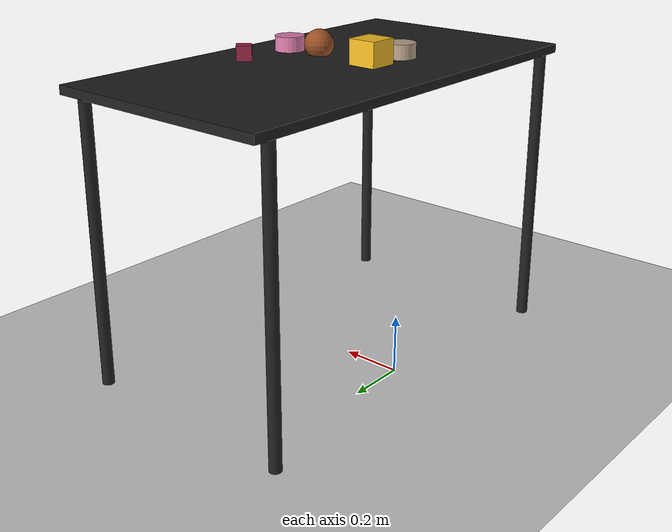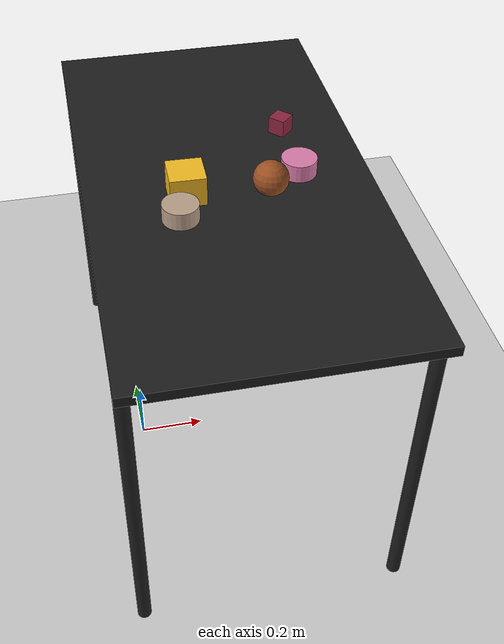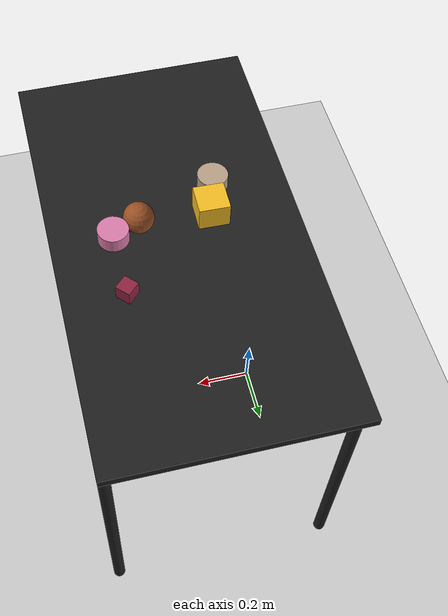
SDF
<?xml version="1.0" ?>
<sdf version="1.6">
  <world name="arm_world">
    <plugin filename="gz-sim-physics-system" name="gz::sim::systems::Physics">
      <engine>
        <filename>libgz-physics-bullet-featherstone-plugin.so</filename>
      </engine>
    </plugin>
    <plugin filename="gz-sim-user-commands-system" name="gz::sim::systems::UserCommands"/>
    <plugin filename="gz-sim-scene-broadcaster-system" name="gz::sim::systems::SceneBroadcaster"/>
    <plugin filename="gz-sim-sensors-system" name="gz::sim::systems::Sensors">
      <render_engine>ogre2</render_engine>
    </plugin>
    <gravity>0.0 0.0 -9.8</gravity>
    <scene>
      <shadows>false</shadows>
    </scene>
    <gui>
      <camera name="user_camera">
        <pose>0.75 -0.75 1.4 0 0.29 2.21</pose>
      </camera>
    </gui>
    <include>
      <uri>https://fuel.gazebosim.org/1.0/OpenRobotics/models/Sun</uri>
    </include>
    <model name="table">
      <static>true</static>
      <include>
        <uri>model://table</uri>
      </include>
      <pose>0.29 0 0 0 0 1.5708</pose>
    </model>
    <model name="ground_plane">
      <static>true</static>
      <link name="link">
        <collision name="collision">
          <geometry>
            <plane>
              <normal>0 0 1</normal>
            </plane>
          </geometry>
          <surface>
            <friction>
              <ode>
                <mu>1.0</mu>
                <mu2>1.0</mu2>
              </ode>
            </friction>
          </surface>
        </collision>
        <visual name="visual">
          <geometry>
            <plane>
              <normal>0 0 1</normal>
              <size>100 100</size>
            </plane>
          </geometry>
          <material>
            <ambient>0.8 0.8 0.8 1</ambient>
            <diffuse>0.8 0.8 0.8 1</diffuse>
            <specular>0.8 0.8 0.8 1</specular>
          </material>
        </visual>
      </link>
    </model>
    <model name="cube_l_0">
      <pose>0.168 -0.061 1.05 0 0 3.12</pose>
      <link name="cube_l_0_link">
        <inertial>
          <mass>0.05</mass>
          <inertia>
            <ixx>2.04e-7</ixx>
            <iyy>2.04e-7</iyy>
            <izz>3.9e-8</izz>
            <ixy>0</ixy>
            <ixz>0</ixz>
            <iyz>0</iyz>
          </inertia>
        </inertial>
        <collision name="cube_l_0_collision">
          <geometry>
            <box>
              <size>0.1 0.1 0.1</size>
            </box>
          </geometry>
          <surface>
            <friction>
              <ode>
                <mu>0.8</mu>
                <mu2>0.8</mu2>
                <fdir1>0 0 1</fdir1>
                <slip1>0.001</slip1>
                <slip2>0.001</slip2>
              </ode>
              <torsional>
                <coefficient>0.1</coefficient>
                <surface_radius>0.015</surface_radius>
                <use_patch_radius>true</use_patch_radius>
              </torsional>
            </friction>
            <contact>
              <ode>
                <kp>1e5</kp>
                <kd>10</kd>
                <max_vel>0.1</max_vel>
                <min_depth>0.001</min_depth>
                <soft_cfm>0.01</soft_cfm>
                <soft_erp>0.2</soft_erp>
              </ode>
            </contact>
            <bounce>
              <restitution_coefficient>0.2</restitution_coefficient>
              <threshold>0.01</threshold>
            </bounce>
          </surface>
        </collision>
        <visual name="cube_l_0_visual">
          <geometry>
            <box>
              <size>0.1 0.1 0.1</size>
            </box>
          </geometry>
          <material>
            <ambient>0.96 0.74 0.14 1</ambient>
            <diffuse>0.96 0.74 0.14 1</diffuse>
          </material>
        </visual>
        <velocity_decay>
          <linear>1</linear>
          <angular>1</angular>
        </velocity_decay>
      </link>
    </model>
    <model name="cylinder_l_1">
      <pose>0.489 -0.028 1.05 0 0 6.13</pose>
      <link name="cylinder_l_1_link">
        <inertial>
          <mass>0.05</mass>
          <inertia>
            <ixx>2.04e-7</ixx>
            <iyy>2.04e-7</iyy>
            <izz>3.9e-8</izz>
            <ixy>0</ixy>
            <ixz>0</ixz>
            <iyz>0</iyz>
          </inertia>
        </inertial>
        <collision name="cylinder_l_1_collision">
          <geometry>
            <cylinder>
              <radius>0.05</radius>
              <length>0.05</length>
            </cylinder>
          </geometry>
          <surface>
            <friction>
              <ode>
                <mu>0.8</mu>
                <mu2>0.8</mu2>
                <fdir1>0 0 1</fdir1>
                <slip1>0.001</slip1>
                <slip2>0.001</slip2>
              </ode>
              <torsional>
                <coefficient>0.1</coefficient>
                <surface_radius>0.015</surface_radius>
                <use_patch_radius>true</use_patch_radius>
              </torsional>
            </friction>
            <contact>
              <ode>
                <kp>1e5</kp>
                <kd>10</kd>
                <max_vel>0.1</max_vel>
                <min_depth>0.001</min_depth>
                <soft_cfm>0.01</soft_cfm>
                <soft_erp>0.2</soft_erp>
              </ode>
            </contact>
            <bounce>
              <restitution_coefficient>0.2</restitution_coefficient>
              <threshold>0.01</threshold>
            </bounce>
          </surface>
        </collision>
        <visual name="cylinder_l_1_visual">
          <geometry>
            <cylinder>
              <radius>0.05</radius>
              <length>0.05</length>
            </cylinder>
          </geometry>
          <material>
            <ambient>0.86 0.49 0.67 1</ambient>
            <diffuse>0.86 0.49 0.67 1</diffuse>
          </material>
        </visual>
        <velocity_decay>
          <linear>1</linear>
          <angular>1</angular>
        </velocity_decay>
      </link>
    </model>
    <model name="cylinder_l_2">
      <pose>0.135 -0.172 1.05 0 0 0.13</pose>
      <link name="cylinder_l_2_link">
        <inertial>
          <mass>0.05</mass>
          <inertia>
            <ixx>2.04e-7</ixx>
            <iyy>2.04e-7</iyy>
            <izz>3.9e-8</izz>
            <ixy>0</ixy>
            <ixz>0</ixz>
            <iyz>0</iyz>
          </inertia>
        </inertial>
        <collision name="cylinder_l_2_collision">
          <geometry>
            <cylinder>
              <radius>0.05</radius>
              <length>0.05</length>
            </cylinder>
          </geometry>
          <surface>
            <friction>
              <ode>
                <mu>0.8</mu>
                <mu2>0.8</mu2>
                <fdir1>0 0 1</fdir1>
                <slip1>0.001</slip1>
                <slip2>0.001</slip2>
              </ode>
              <torsional>
                <coefficient>0.1</coefficient>
                <surface_radius>0.015</surface_radius>
                <use_patch_radius>true</use_patch_radius>
              </torsional>
            </friction>
            <contact>
              <ode>
                <kp>1e5</kp>
                <kd>10</kd>
                <max_vel>0.1</max_vel>
                <min_depth>0.001</min_depth>
                <soft_cfm>0.01</soft_cfm>
                <soft_erp>0.2</soft_erp>
              </ode>
            </contact>
            <bounce>
              <restitution_coefficient>0.2</restitution_coefficient>
              <threshold>0.01</threshold>
            </bounce>
          </surface>
        </collision>
        <visual name="cylinder_l_2_visual">
          <geometry>
            <cylinder>
              <radius>0.05</radius>
              <length>0.05</length>
            </cylinder>
          </geometry>
          <material>
            <ambient>0.73 0.63 0.54 1</ambient>
            <diffuse>0.73 0.63 0.54 1</diffuse>
          </material>
        </visual>
        <velocity_decay>
          <linear>1</linear>
          <angular>1</angular>
        </velocity_decay>
      </link>
    </model>
    <model name="sphere_l_3">
      <pose>0.399 -0.074 1.05 0 0 5.13</pose>
      <link name="sphere_l_3_link">
        <inertial>
          <mass>0.05</mass>
          <inertia>
            <ixx>2.04e-7</ixx>
            <iyy>2.04e-7</iyy>
            <izz>3.9e-8</izz>
            <ixy>0</ixy>
            <ixz>0</ixz>
            <iyz>0</iyz>
          </inertia>
        </inertial>
        <collision name="sphere_l_3_collision">
          <geometry>
            <sphere>
              <radius>0.05</radius>
            </sphere>
          </geometry>
          <surface>
            <friction>
              <ode>
                <mu>0.8</mu>
                <mu2>0.8</mu2>
                <fdir1>0 0 1</fdir1>
                <slip1>0.001</slip1>
                <slip2>0.001</slip2>
              </ode>
              <torsional>
                <coefficient>0.1</coefficient>
                <surface_radius>0.015</surface_radius>
                <use_patch_radius>true</use_patch_radius>
              </torsional>
            </friction>
            <contact>
              <ode>
                <kp>1e5</kp>
                <kd>10</kd>
                <max_vel>0.1</max_vel>
                <min_depth>0.001</min_depth>
                <soft_cfm>0.01</soft_cfm>
                <soft_erp>0.2</soft_erp>
              </ode>
            </contact>
            <bounce>
              <restitution_coefficient>0.2</restitution_coefficient>
              <threshold>0.01</threshold>
            </bounce>
          </surface>
        </collision>
        <visual name="sphere_l_3_visual">
          <geometry>
            <sphere>
              <radius>0.05</radius>
            </sphere>
          </geometry>
          <material>
            <ambient>0.6 0.31 0.14 1</ambient>
            <diffuse>0.6 0.31 0.14 1</diffuse>
          </material>
        </visual>
        <velocity_decay>
          <linear>1</linear>
          <angular>1</angular>
        </velocity_decay>
      </link>
    </model>
    <model name="cube_m_4">
      <pose>0.489 0.187 1.05 0 0 3.91</pose>
      <link name="cube_m_4_link">
        <inertial>
          <mass>0.05</mass>
          <inertia>
            <ixx>2.04e-7</ixx>
            <iyy>2.04e-7</iyy>
            <izz>3.9e-8</izz>
            <ixy>0</ixy>
            <ixz>0</ixz>
            <iyz>0</iyz>
          </inertia>
        </inertial>
        <collision name="cube_m_4_collision">
          <geometry>
            <box>
              <size>0.05 0.05 0.05</size>
            </box>
          </geometry>
          <surface>
            <friction>
              <ode>
                <mu>0.8</mu>
                <mu2>0.8</mu2>
                <fdir1>0 0 1</fdir1>
                <slip1>0.001</slip1>
                <slip2>0.001</slip2>
              </ode>
              <torsional>
                <coefficient>0.1</coefficient>
                <surface_radius>0.015</surface_radius>
                <use_patch_radius>true</use_patch_radius>
              </torsional>
            </friction>
            <contact>
              <ode>
                <kp>1e5</kp>
                <kd>10</kd>
                <max_vel>0.1</max_vel>
                <min_depth>0.001</min_depth>
                <soft_cfm>0.01</soft_cfm>
                <soft_erp>0.2</soft_erp>
              </ode>
            </contact>
            <bounce>
              <restitution_coefficient>0.2</restitution_coefficient>
              <threshold>0.01</threshold>
            </bounce>
          </surface>
        </collision>
        <visual name="cube_m_4_visual">
          <geometry>
            <box>
              <size>0.05 0.05 0.05</size>
            </box>
          </geometry>
          <material>
            <ambient>0.56 0.14 0.25 1</ambient>
            <diffuse>0.56 0.14 0.25 1</diffuse>
          </material>
        </visual>
        <velocity_decay>
          <linear>1</linear>
          <angular>1</angular>
        </velocity_decay>
      </link>
    </model>
  </world>
</sdf>

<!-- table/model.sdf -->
<sdf version="1.5">
  <model name="table">
    <static>true</static>
    <link name="link">
      <collision name="surface">
        <pose>0 0 1.0 0 0 0</pose>
        <geometry>
          <box>
            <size>1.5 0.8 0.03</size>
          </box>
        </geometry>
        <surface>
          <friction>
            <ode>
              <mu>0.6</mu>
              <mu2>0.6</mu2>
            </ode>
          </friction>
        </surface>
      </collision>
      <visual name="surface">
        <pose>0 0 1.0 0 0 0</pose>
        <geometry>
          <box>
            <size>1.5 0.8 0.03</size>
          </box>
        </geometry>
        <material>
          <script>
            <uri>file://media/materials/scripts/gazebo.material</uri>
            <name>Gazebo/Black</name>
          </script>
        </material>
      </visual>
      <collision name="front_left_leg">
        <pose>0.68 0.38 0.5 0 0 0</pose>
        <geometry>
          <cylinder>
            <radius>0.02</radius>
            <length>1.0</length>
          </cylinder>
        </geometry>
      </collision>
      <visual name="front_left_leg">
        <pose>0.68 0.38 0.5 0 0 0</pose>
        <geometry>
          <cylinder>
            <radius>0.02</radius>
            <length>1.0</length>
          </cylinder>
        </geometry>
        <material>
          <script>
            <uri>file://media/materials/scripts/gazebo.material</uri>
            <name>Gazebo/Black</name>
          </script>
        </material>
      </visual>
      <collision name="front_right_leg">
        <pose>0.68 -0.38 0.5 0 0 0</pose>
        <geometry>
          <cylinder>
            <radius>0.02</radius>
            <length>1.0</length>
          </cylinder>
        </geometry>
      </collision>
      <visual name="front_right_leg">
        <pose>0.68 -0.38 0.5 0 0 0</pose>
        <geometry>
          <cylinder>
            <radius>0.02</radius>
            <length>1.0</length>
          </cylinder>
        </geometry>
        <material>
          <script>
            <uri>file://media/materials/scripts/gazebo.material</uri>
            <name>Gazebo/Black</name>
          </script>
        </material>
      </visual>
      <collision name="back_right_leg">
        <pose>-0.68 -0.38 0.5 0 0 0</pose>
        <geometry>
          <cylinder>
            <radius>0.02</radius>
            <length>1.0</length>
          </cylinder>
        </geometry>
      </collision>
      <visual name="back_right_leg">
        <pose>-0.68 -0.38 0.5 0 0 0</pose>
        <geometry>
          <cylinder>
            <radius>0.02</radius>
            <length>1.0</length>
          </cylinder>
        </geometry>
        <material>
          <script>
            <uri>file://media/materials/scripts/gazebo.material</uri>
            <name>Gazebo/Black</name>
          </script>
        </material>
      </visual>
      <collision name="back_left_leg">
        <pose>-0.68 0.38 0.5 0 0 0</pose>
        <geometry>
          <cylinder>
            <radius>0.02</radius>
            <length>1.0</length>
          </cylinder>
        </geometry>
      </collision>
      <visual name="back_left_leg">
        <pose>-0.68 0.38 0.5 0 0 0</pose>
        <geometry>
          <cylinder>
            <radius>0.02</radius>
            <length>1.0</length>
          </cylinder>
        </geometry>
        <material>
          <script>
            <uri>file://media/materials/scripts/gazebo.material</uri>
            <name>Gazebo/Black</name>
          </script>
        </material>
      </visual>
    </link>
  </model>
</sdf>
